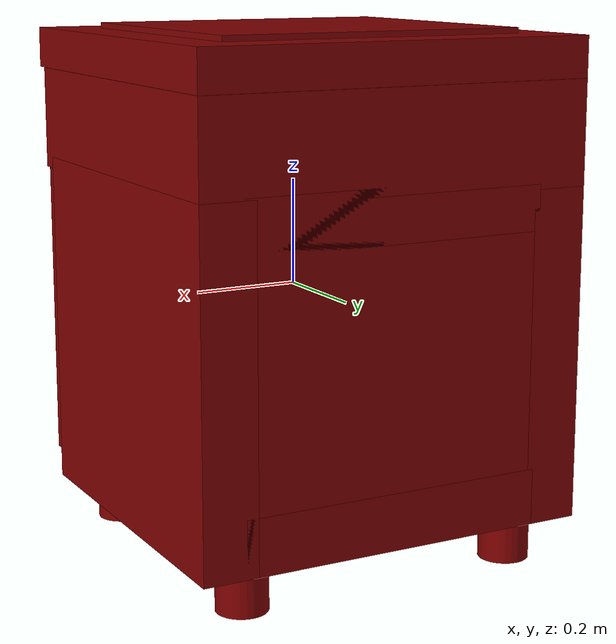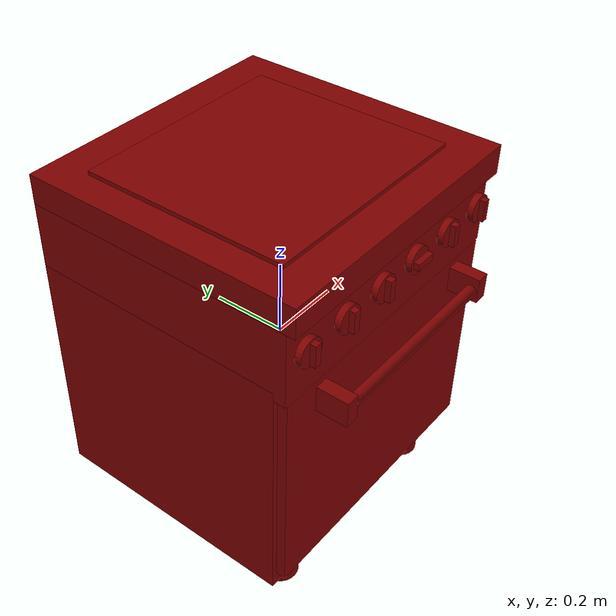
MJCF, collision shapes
<?xml version='1.0' encoding='UTF-8'?>
<mujoco model="model">
  <option timestep="0.002" gravity="0.0 0.0 -9.81"/>
  <compiler angle="radian"/>
  <asset>
    <mesh file="visuals/door.obj" name="door_vis"/>
    <mesh file="visuals/door_Clear.obj" name="door_Clear_vis"/>
    <mesh file="visuals/knob_front_left.obj" name="knob_front_left_vis"/>
    <mesh file="visuals/knob_front_right.obj" name="knob_front_right_vis"/>
    <mesh file="visuals/knob_rear_left.obj" name="knob_rear_left_vis"/>
    <mesh file="visuals/knob_rear_right.obj" name="knob_rear_right_vis"/>
    <mesh file="visuals/knob_temp.obj" name="knob_temp_vis"/>
    <mesh file="visuals/knob_time.obj" name="knob_time_vis"/>
    <mesh file="visuals/rack0.obj" name="rack0_vis"/>
    <mesh file="visuals/rack1.obj" name="rack1_vis"/>
    <mesh file="visuals/Body001.obj" name="Body001_vis"/>
    <mesh file="visuals/Body002.obj" name="Body002_vis"/>
    <texture file="visuals/T_BC001.png" name="Body001_material" type="2d"/>
    <material name="Body001_material" rgba="1 1 1 1.0" texture="Body001_material" shininess="0.141421377658844" specular="1"/>
    <texture file="visuals/T_BC001.png" name="door_material" type="2d"/>
    <material name="door_material" rgba="1 1 1 1.0" texture="door_material" shininess="0.141421377658844" specular="1"/>
    <texture file="visuals/T_BC001.png" name="door_Clear_material" type="2d"/>
    <material name="door_Clear_material" rgba="1 1 1 0.8" texture="door_Clear_material" shininess="0.141421377658844" specular="0.3103448502657381"/>
    <texture file="visuals/T_BC001.png" name="knob_front_left_material" type="2d"/>
    <material name="knob_front_left_material" rgba="1 1 1 1.0" texture="knob_front_left_material" shininess="0.141421377658844" specular="0.3103448502657381"/>
    <texture file="visuals/T_BC001.png" name="knob_front_right_material" type="2d"/>
    <material name="knob_front_right_material" rgba="1 1 1 1.0" texture="knob_front_right_material" shininess="0.141421377658844" specular="0.3103448502657381"/>
    <texture file="visuals/T_BC001.png" name="knob_rear_left_material" type="2d"/>
    <material name="knob_rear_left_material" rgba="1 1 1 1.0" texture="knob_rear_left_material" shininess="0.141421377658844" specular="0.3103448502657381"/>
    <texture file="visuals/T_BC001.png" name="knob_rear_right_material" type="2d"/>
    <material name="knob_rear_right_material" rgba="1 1 1 1.0" texture="knob_rear_right_material" shininess="0.141421377658844" specular="0.3103448502657381"/>
    <texture file="visuals/T_BC001.png" name="knob_temp_material" type="2d"/>
    <material name="knob_temp_material" rgba="1 1 1 1.0" texture="knob_temp_material" shininess="0.141421377658844" specular="0.3103448502657381"/>
    <texture file="visuals/T_BC001.png" name="knob_time_material" type="2d"/>
    <material name="knob_time_material" rgba="1 1 1 1.0" texture="knob_time_material" shininess="0.141421377658844" specular="0.3103448502657381"/>
    <texture file="visuals/T_BC001.png" name="rack0_material" type="2d"/>
    <material name="rack0_material" rgba="1 1 1 1.0" texture="rack0_material" shininess="0.141421377658844" specular="1"/>
    <texture file="visuals/T_BC001.png" name="rack1_material" type="2d"/>
    <material name="rack1_material" rgba="1 1 1 1.0" texture="rack1_material" shininess="0.141421377658844" specular="1"/>
    <texture file="visuals/T_BC001.png" name="Body002_material" type="2d"/>
    <material name="Body002_material" rgba="1 1 1 1.0" texture="Body002_material" shininess="0.141421377658844" specular="0.3103448502657381"/>
  </asset>
  <default>
    <default class="visual">
      <geom conaffinity="0" contype="0" group="1" type="mesh"/>
    </default>
    <default class="collision">
      <geom group="0" rgba="0.5 0 0 0.5"/>
    </default>
    <default class="spawn">
      <geom group="0" rgba="1 1 1 0.5" contype="0" conaffinity="0"/>
      <site group="0" rgba="1 1 1 0.5"/>
    </default>
    <default class="region">
      <geom group="1" conaffinity="0" contype="0" rgba="0 1 0 0"/>
    </default>
  </default>
  <worldbody>
    <body>
      <body name="object">
        <geom mesh="Body001_vis" type="mesh" solimp="0.998 0.998 0.001" solref="0.001 1" friction="0.95 0.3 0.1" class="visual" material="Body001_material"/>
        <geom class="collision" type="box" pos="0.00000001 0.03086766 0.44024515" size="0.3763693869113922 0.3646935522556305 0.03754124045372009" quat="1.0 0.0 0.0 0.0"/>
        <geom class="collision" type="box" pos="0.00000001 0.04199815 0.30699864" size="0.3763693869113922 0.3535631000995636 0.09539087116718292" quat="1.0 0.0 0.0 0.0"/>
        <geom class="collision" type="box" pos="-0.32396752 0.05726252 -0.08700723" size="0.052401889115571976 0.3382987082004547 0.31983500719070435" quat="1.0 0.0 0.0 0.0"/>
        <geom class="collision" type="box" pos="0.32518071 0.05726252 -0.08700723" size="0.051188722252845764 0.3382987082004547 0.31983500719070435" quat="1.0 0.0 0.0 0.0"/>
        <geom class="collision" type="box" pos="0.00658564 0.05726252 -0.35427520" size="0.2886805534362793 0.3382987082004547 0.05256704241037369" quat="1.0 0.0 0.0 0.0"/>
        <geom class="collision" type="box" pos="0.00658564 0.29790708 -0.04516158" size="0.2886805534362793 0.09765408933162689 0.2812975347042084" quat="1.0 0.0 0.0 0.0"/>
        <geom class="collision" type="box" pos="0.00658564 0.05726252 0.17949683" size="0.2886805534362793 0.3382987082004547 0.04153593257069588" quat="1.0 0.0 0.0 0.0"/>
        <geom class="collision" type="cylinder" pos="-0.27166328 0.32449132 -0.44179070" size="0.04706542566418648 0.04655295982956886" quat="1.0 0.0 0.0 0.0"/>
        <geom class="collision" type="cylinder" pos="0.27221748 0.32449132 -0.44179070" size="0.04706542566418648 0.04655295982956886" quat="1.0 0.0 0.0 0.0"/>
        <geom class="collision" type="cylinder" pos="0.27221748 -0.22101906 -0.44179070" size="0.04706542566418648 0.04655295982956886" quat="1.0 0.0 0.0 0.0"/>
        <geom class="collision" type="cylinder" pos="-0.27226067 -0.22101906 -0.44179070" size="0.04706542566418648 0.04655295982956886" quat="1.0 0.0 0.0 0.0"/>
        <geom class="collision" type="box" pos="-0.25629091 -0.03312030 -0.04202199" size="0.02580404467880726 0.20058277249336243 0.0038279599975794554" quat="1.0 0.0 0.0 0.0"/>
        <geom class="collision" type="box" pos="-0.25629091 -0.02492097 -0.06296766" size="0.02580404467880726 0.20557105541229248 0.0038279599975794554" quat="1.0 0.0 0.0 0.0"/>
        <geom class="collision" type="box" pos="-0.25629091 -0.02517149 -0.19543925" size="0.02580404467880726 0.20582157373428345 0.0038279599975794554" quat="1.0 0.0 0.0 0.0"/>
        <geom class="collision" type="box" pos="-0.25629091 -0.03312030 -0.17615465" size="0.02580404467880726 0.20058277249336243 0.0038279599975794554" quat="1.0 0.0 0.0 0.0"/>
        <geom class="collision" type="box" pos="0.26043957 -0.03312030 -0.17615465" size="0.02580404467880726 0.20058277249336243 0.0038279599975794554" quat="1.0 0.0 0.0 0.0"/>
        <geom class="collision" type="box" pos="0.25882387 -0.02493162 -0.19543925" size="0.02580404467880726 0.20558170974254608 0.0038279599975794554" quat="1.0 0.0 0.0 0.0"/>
        <geom class="collision" type="box" pos="0.25882387 -0.02526277 -0.06256317" size="0.02580404467880726 0.20591285824775696 0.0038279599975794554" quat="1.0 0.0 0.0 0.0"/>
        <geom class="collision" type="box" pos="0.26043957 -0.03312030 -0.04327856" size="0.02580404467880726 0.20058277249336243 0.0038279599975794554" quat="1.0 0.0 0.0 0.0"/>
        <body name="door">
          <joint axis="1.0 0.0 0.0" pos="-0.01463734 -0.28014922 -0.38335115" limited="true" name="door_joint" range="0.0 1.5707963267948966" type="hinge" damping="1" frictionloss="1" armature=".01" stiffness="5" springref="-4"/>
          <geom mesh="door_vis" type="mesh" solimp="0.998 0.998 0.001" solref="0.001 1" friction="0.95 0.3 0.1" class="visual" material="door_material"/>
          <geom class="collision" type="box" pos="0.00328508 -0.29997653 -0.10253498" size="0.24195320904254913 0.0036469013430178165 0.16780570149421692" quat="1.0 0.0 0.0 0.0"/>
          <geom class="collision" type="box" pos="0.00021984 -0.29964781 -0.07351578" size="0.37071308493614197 0.012226467952132225 0.28229859471321106" quat="1.0 0.0 0.0 0.0" name="door_main"/>
          <geom class="collision" type="box" pos="-0.26121706 -0.35633612 0.16696326" size="0.017483189702033997 0.04034726321697235 0.03301422670483589" quat="1.0 0.0 0.0 0.0"/>
          <geom class="collision" type="box" pos="0.26150107 -0.35633612 0.16696326" size="0.017483200877904892 0.04034728556871414 0.03301424905657768" quat="1.0 0.0 0.0 0.0"/>
          <geom class="collision" type="cylinder" pos="0.00197627 -0.37796131 0.16171167" size="0.015277725644409657 0.24750691652297974" quat="0.7071068286895752 -0.0 0.7071067690849304 0.0" name="door_handle_main"/>
          <body name="door_Clear">
            <geom mesh="door_Clear_vis" type="mesh" solimp="0.998 0.998 0.001" solref="0.001 1" friction="0.95 0.3 0.1" class="visual" material="door_Clear_material"/>
            <geom class="collision" type="box" pos="0.00328508 -0.29997653 -0.10253498" size="0.24195320904254913 0.0036469013430178165 0.16780570149421692" quat="1.0 0.0 0.0 0.0"/>
          </body>
        </body>
        <body name="knob_front_left">
          <joint axis="0.0 -1.0 0.0" pos="-0.32040098 -0.32865691 0.33225393" limited="true" name="knob_front_left_joint" range="0.0 3.141592653589793" type="hinge" damping="0.05" frictionloss="0.75" armature="1"/>
          <geom mesh="knob_front_left_vis" type="mesh" solimp="0.998 0.998 0.001" solref="0.001 1" friction="0.95 0.3 0.1" class="visual" material="knob_front_left_material"/>
          <geom class="collision" type="cylinder" pos="-0.32107303 -0.32377225 0.33228319" size="0.034505799412727356 0.00798241887241602" quat="0.7071067094802856 0.7071068286895752 0.0 0.0" friction="100 0.5 0.01"/>
          <geom class="collision" type="box" pos="-0.31966290 -0.33963025 0.33286184" size="0.008670815266668797 0.007262000814080238 0.02791677787899971" quat="1.0 0.0 0.0 0.0" name="knob_front_left_main" friction="100 0.5 0.01"/>
        </body>
        <body name="knob_front_right">
          <joint axis="0.0 -1.0 0.0" pos="0.32292113 -0.32865691 0.33225393" limited="true" name="knob_front_right_joint" range="0.0 3.141592653589793" type="hinge" damping="0.05" frictionloss="0.75" armature="1"/>
          <geom mesh="knob_front_right_vis" type="mesh" solimp="0.998 0.998 0.001" solref="0.001 1" friction="0.95 0.3 0.1" class="visual" material="knob_front_right_material"/>
          <geom class="collision" type="box" pos="0.32284451 -0.33963025 0.33286184" size="0.008670815266668797 0.007262000814080238 0.02791677787899971" quat="1.0 0.0 0.0 0.0" name="knob_front_right_main" friction="100 0.5 0.01"/>
          <geom class="collision" type="cylinder" pos="0.32276529 -0.32377225 0.33228319" size="0.034505799412727356 0.00798241887241602" quat="0.7071067094802856 0.7071068286895752 0.0 0.0" friction="100 0.5 0.01"/>
        </body>
        <body name="knob_rear_left">
          <joint axis="0.0 -1.0 0.0" pos="-0.19112378 -0.32865691 0.33225393" limited="true" name="knob_rear_left_joint" range="0.0 3.141592653589793" type="hinge" damping="0.05" frictionloss="0.75" armature="1"/>
          <geom mesh="knob_rear_left_vis" type="mesh" solimp="0.998 0.998 0.001" solref="0.001 1" friction="0.95 0.3 0.1" class="visual" material="knob_rear_left_material"/>
          <geom class="collision" type="box" pos="-0.19054845 -0.33963025 0.33286184" size="0.008670815266668797 0.007262000814080238 0.02791677787899971" quat="1.0 0.0 0.0 0.0" name="knob_rear_left_main" friction="100 0.5 0.01"/>
          <geom class="collision" type="cylinder" pos="-0.19195858 -0.32377225 0.33228319" size="0.034505799412727356 0.00798241887241602" quat="0.7071067094802856 0.7071068286895752 0.0 0.0" friction="100 0.5 0.01"/>
        </body>
        <body name="knob_rear_right">
          <joint axis="0.0 -1.0 0.0" pos="0.19418977 -0.32865691 0.33225393" limited="true" name="knob_rear_right_joint" range="0.0 3.141592653589793" type="hinge" damping="0.05" frictionloss="0.75" armature="1"/>
          <geom mesh="knob_rear_right_vis" type="mesh" solimp="0.998 0.998 0.001" solref="0.001 1" friction="0.95 0.3 0.1" class="visual" material="knob_rear_right_material"/>
          <geom class="collision" type="box" pos="0.19378328 -0.33963025 0.33286184" size="0.008670815266668797 0.007262000814080238 0.02791677787899971" quat="1.0 0.0 0.0 0.0" name="knob_rear_right_main" friction="100 0.5 0.01"/>
          <geom class="collision" type="cylinder" pos="0.19389421 -0.32377225 0.33228319" size="0.034505799412727356 0.00798241887241602" quat="0.7071067094802856 0.7071068286895752 0.0 0.0" friction="100 0.5 0.01"/>
        </body>
        <body name="knob_temp">
          <joint axis="0.0 1.0 0.0" pos="0.06530759 -0.32865691 0.33225393" limited="true" name="knob_temp_joint" range="0.0 3.2288591161895095" type="hinge" damping="0.05" frictionloss="0.75" armature="1"/>
          <geom mesh="knob_temp_vis" type="mesh" solimp="0.998 0.998 0.001" solref="0.001 1" friction="0.95 0.3 0.1" class="visual" material="knob_temp_material"/>
          <geom class="collision" type="box" pos="0.06666140 -0.33963025 0.33286184" size="0.02791677787899971 0.007262000814080238 0.008670817129313946" quat="1.0 0.0 0.0 0.0" name="knob_temp_main" friction="100 0.5 0.01"/>
          <geom class="collision" type="cylinder" pos="0.06525127 -0.32377225 0.33228319" size="0.034505799412727356 0.00798241887241602" quat="0.7071067094802856 0.7071068286895752 0.0 0.0" friction="100 0.5 0.01"/>
        </body>
        <body name="knob_time">
          <joint axis="0.0 1.0 0.0" pos="-0.06271379 -0.32865691 0.33225393" limited="true" name="knob_time_joint" range="0.0 4.014257279586958" type="hinge" damping="0.05" frictionloss="0.75" armature="1"/>
          <geom mesh="knob_time_vis" type="mesh" solimp="0.998 0.998 0.001" solref="0.001 1" friction="0.95 0.3 0.1" class="visual" material="knob_time_material"/>
          <geom class="collision" type="box" pos="-0.06228576 -0.33963025 0.33286184" size="0.008670815266668797 0.007262000814080238 0.02791677787899971" quat="1.0 0.0 0.0 0.0" name="knob_time_main" friction="100 0.5 0.01"/>
          <geom class="collision" type="cylinder" pos="-0.06369589 -0.32377225 0.33228319" size="0.034505799412727356 0.00798241887241602" quat="0.7071067094802856 0.7071068286895752 0.0 0.0" friction="100 0.5 0.01"/>
        </body>
        <body name="rack0">
          <geom class="region" name="reg_rack0" type="box" pos="0.0038446550000000024 -0.0193503 -0.12298615" size="0.223116415 0.17852975999999998 0.060233400000000006"/>
          <joint axis="0.0 -1.0 0.0" pos="-0.00245107 -0.02057850 -0.18990605" limited="true" name="rack0_joint" range="0.0 0.35" type="slide" damping="1" frictionloss="1" armature=".01" stiffness="0.05"/>
          <geom mesh="rack0_vis" type="mesh" solimp="0.998 0.998 0.001" solref="0.001 1" friction="0.95 0.3 0.1" class="visual" material="rack0_material"/>
          <geom class="collision" type="box" pos="0.00373472 -0.02072057 -0.18990604" size="0.22791323065757751 0.18404240906238556 0.00526410574093461" quat="1.0 0.0 0.0 0.0"/>
        </body>
        <body name="rack1">
          <geom class="region" name="reg_rack1" type="box" pos="0.0038446550000000024 -0.0193503 0.042956755000000006" size="0.223116415 0.17852975999999998 0.090896535"/>
          <joint axis="0.0 -1.0 0.0" pos="-0.00245107 -0.02057851 -0.05462806" limited="true" name="rack1_joint" range="0.0 0.35" type="slide" damping="1" frictionloss="1" armature=".01" stiffness="0.05"/>
          <geom mesh="rack1_vis" type="mesh" solimp="0.998 0.998 0.001" solref="0.001 1" friction="0.95 0.3 0.1" class="visual" material="rack1_material"/>
          <geom class="collision" type="box" pos="0.00306919 -0.02062111 -0.05462805" size="0.22826971113681793 0.18414188921451569 0.00526410061866045" quat="1.0 0.0 0.0 0.0"/>
        </body>
        <body name="Body002">
          <geom mesh="Body002_vis" type="mesh" solimp="0.998 0.998 0.001" solref="0.001 1" friction="0.95 0.3 0.1" class="visual" material="Body002_material"/>
          <geom class="collision" type="box" pos="-0.00630576 0.02615755 0.47955042" size="0.2919226288795471 0.2680940330028534 0.008766614831984043" quat="1.0 0.0 0.0 0.0"/>
        </body>
        <geom class="region" name="reg_int" type="box" pos="0.0011573249999999868 -0.04115018499999999 -0.08177899999999999" size="0.268224385 0.23708222499999998 0.21563884"/>
        <site type="cylinder" rgba="0.3 0.4 1 0.5" size="0.06452909111976624 0.006087250076234341" pos="-0.15894370 -0.10788261 0.47509655" name="burner_on_front_left"/>
        <site type="cylinder" rgba="0.3 0.4 1 0.5" size="0.06452909111976624 0.006087250076234341" pos="0.15074840 -0.10807519 0.47509655" name="burner_on_front_right"/>
        <site type="cylinder" rgba="0.3 0.4 1 0.5" size="0.06452909111976624 0.006087250076234341" pos="-0.15907079 0.15959816 0.47509655" name="burner_on_rear_left"/>
        <site type="cylinder" rgba="0.3 0.4 1 0.5" size="0.06452909111976624 0.006087250076234341" pos="0.15016164 0.15958986 0.47509655" name="burner_on_rear_right"/>
        <site type="cylinder" rgba="0.5 0 0 0" size="0.06452909111976624 4.999999873689376e-05" pos="-0.15894370 -0.10788261 0.48839378" name="burner_front_left_place_site"/>
        <site type="cylinder" rgba="0.5 0 0 0" size="0.06452909111976624 4.999999873689376e-05" pos="0.15074840 -0.10807519 0.48836705" name="burner_front_right_place_site"/>
        <site type="cylinder" rgba="0.5 0 0 0" size="0.06452909111976624 4.999999873689376e-05" pos="-0.15907079 0.15959816 0.48839378" name="burner_rear_left_place_site"/>
        <site type="cylinder" rgba="0.5 0 0 0" size="0.06452909111976624 4.999999873689376e-05" pos="0.15016164 0.15958986 0.48836708" name="burner_rear_right_place_site"/>
        <geom class="region" name="reg_main" type="box" pos="-4.999999997368221e-09 0.04103477 -1.3315000000013733e-05" size="0.377369415 0.35552643 0.489330365"/>
      </body>
    </body>
  </worldbody>
  <actuator>
    <motor name="door_joint_actuator" joint="door_joint" gear="100"/>
    <motor name="knob_front_left_joint_actuator" joint="knob_front_left_joint" gear="10"/>
    <motor name="knob_front_right_joint_actuator" joint="knob_front_right_joint" gear="10"/>
    <motor name="knob_rear_left_joint_actuator" joint="knob_rear_left_joint" gear="10"/>
    <motor name="knob_rear_right_joint_actuator" joint="knob_rear_right_joint" gear="10"/>
    <motor name="knob_temp_joint_actuator" joint="knob_temp_joint" gear="10"/>
    <motor name="knob_time_joint_actuator" joint="knob_time_joint" gear="10"/>
    <motor name="rack0_joint_actuator" joint="rack0_joint" gear="50"/>
    <motor name="rack1_joint_actuator" joint="rack1_joint" gear="50"/>
  </actuator>
</mujoco>
